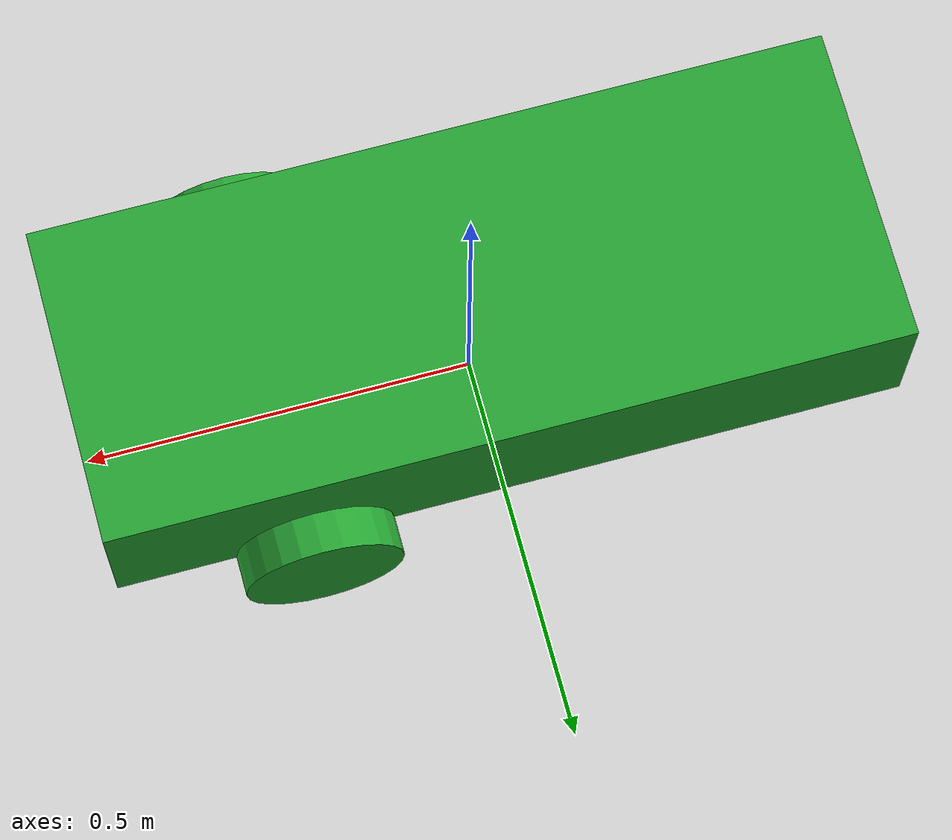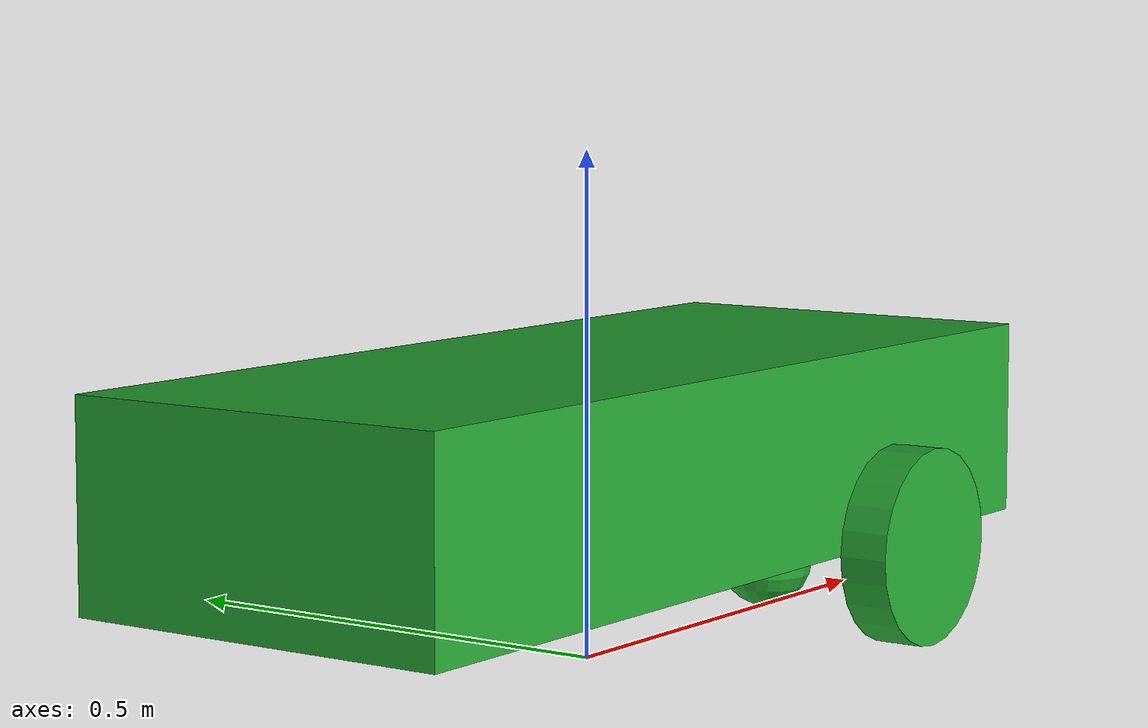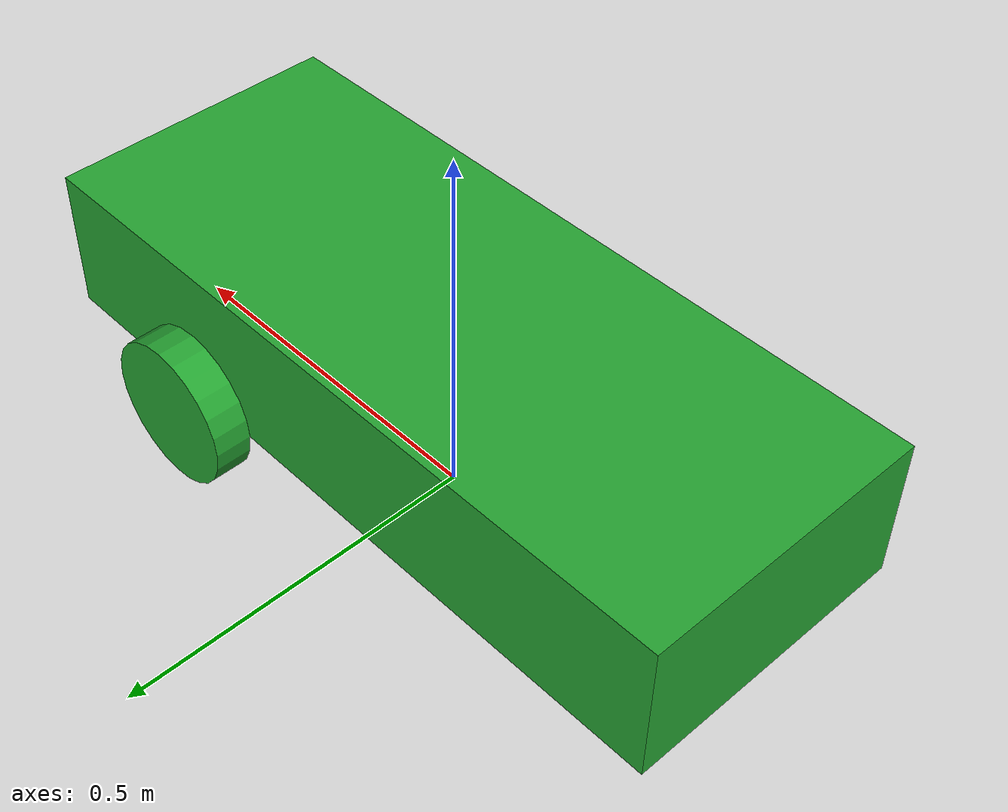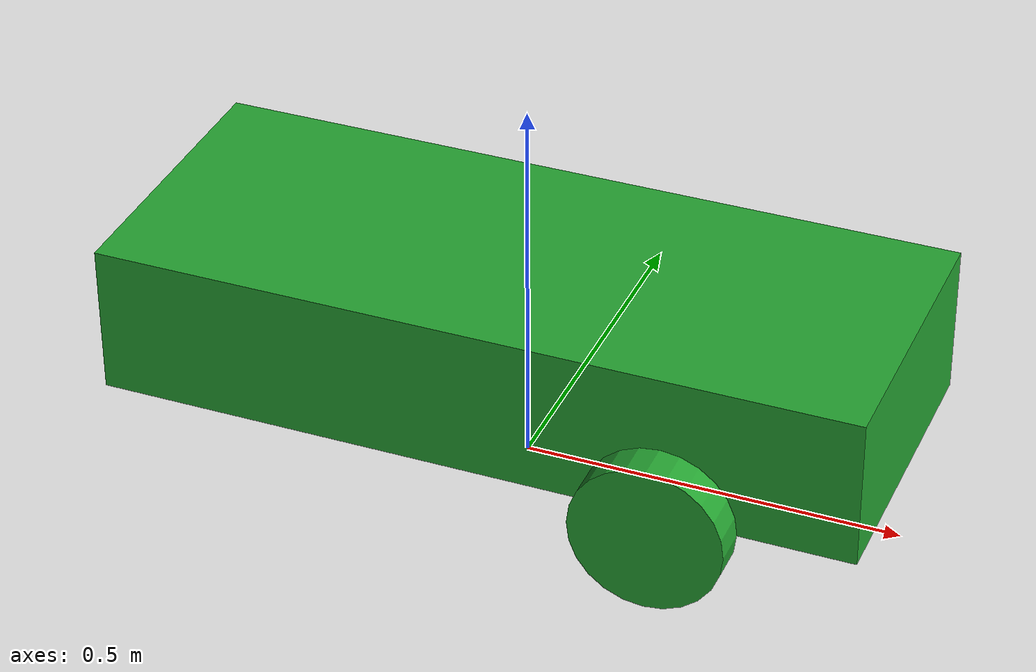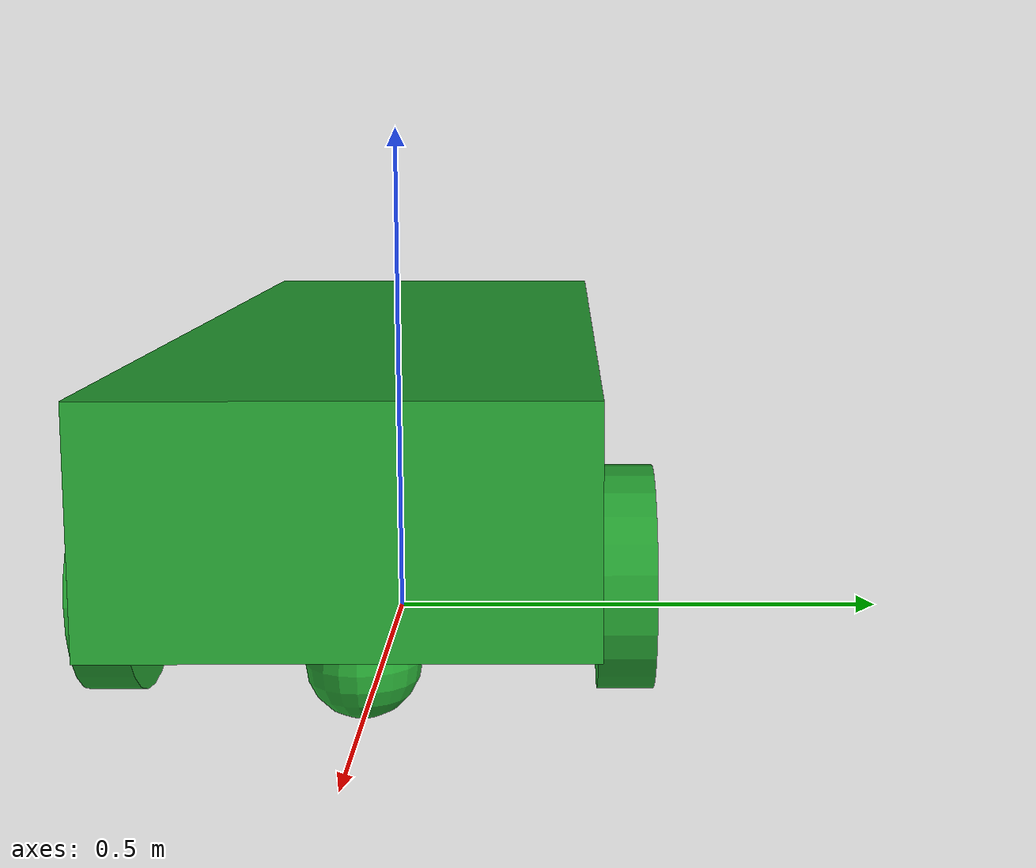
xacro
<?xml version="1.0"?>
<robot xmlns:xacro="http://ros.org/wiki/xacro">
<xacro:property name="base_length" value="1.0" />

    <link name="base_footprint" />
    <link name="base_link">
        <visual>
            <geometry>
                <box size="${base_length} 0.4 0.2" />
            </geometry>
            <origin xyz="0 0 0.1" rpy="0 0 0" />
            <material name="green" />
        </visual>
    </link>

    <link name="right_wheel_link">
        <visual>
            <geometry>
                <cylinder radius="0.1" length="0.05" />
            </geometry>
            <origin xyz="0 0 0" rpy="${pi / 2.0} 0 0" />
            <material name="green" />
        </visual>
    </link>

    <link name="left_wheel_link">
        <visual>
            <geometry>
                <cylinder radius="0.1" length="0.05" />
            </geometry>
            <origin xyz="0 0 0" rpy="1.57 0 0" />
            <material name="green" />
        </visual>
    </link>

    <link name="caster_wheel_link">
        <visual>
            <geometry>
                <sphere radius="0.05" />
            </geometry>
            <origin xyz="0 0 0" rpy="0 0 0" />
            <material name="green" />
        </visual>
    </link>

    <joint name="base_joint" type="fixed">
        <parent link="base_footprint" />
        <child link="base_link" />
        <origin xyz="0 0 0.1" rpy="0 0 0" />
    </joint>

    <joint name="base_right_wheel_joint" type="continuous">
        <parent link="base_link" />
        <child link="right_wheel_link" />
        <origin xyz="${base_length / 4.0} -0.225 0" rpy="0 0 0" />
        <axis xyz="0 1 0" />
    </joint>

    <joint name="base_left_wheel_joint" type="continuous">
        <parent link="base_link" />
        <child link="left_wheel_link" />
        <origin xyz="${base_length / 4.0} 0.225 0" rpy="0 0 0" />
        <axis xyz="0 1 0" />
    </joint>

    <joint name="caster_wheel_joint" type="fixed">
        <parent link="base_link" />
        <child link="caster_wheel_link" />
        <origin xyz="${base_length / 3.0} 0 -0.05" rpy="0 0 0" /> <!--0.05 add to same level of the wheels-->
    </joint>
</robot>
